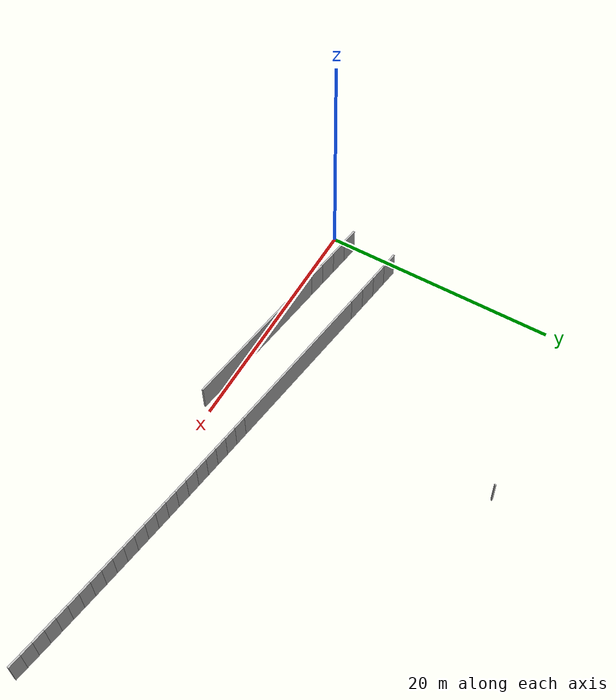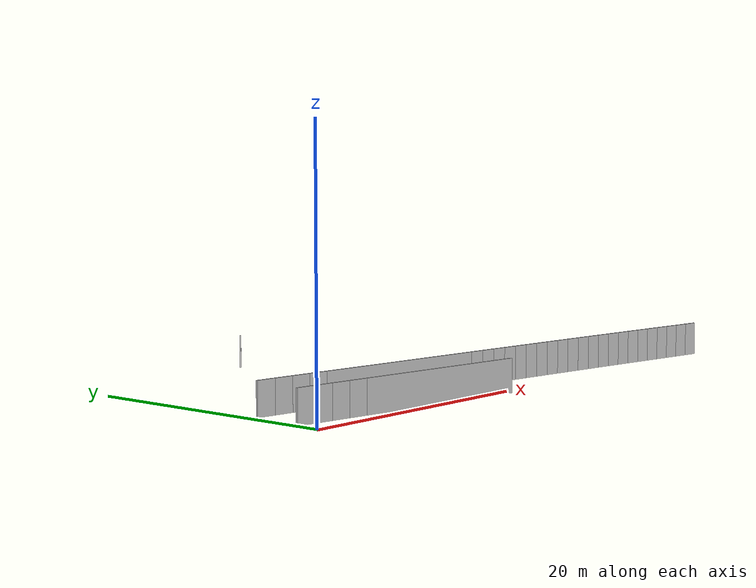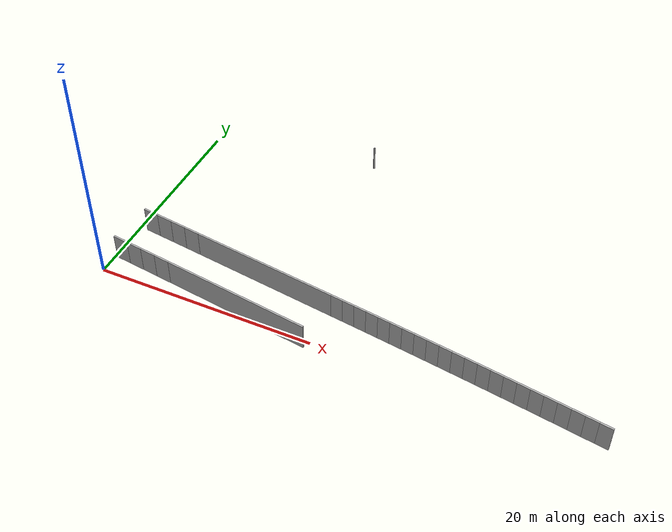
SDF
<?xml version="1.0" ?>
<sdf version="1.6">
  <model name="sps_2647">
    <pose frame="">0 0 0 0 -0 0</pose>
    <static>1</static>
    <self_collide>0</self_collide>
    <allow_auto_disable>0</allow_auto_disable>
    <link name="Wall251">
      <kinematic>0</kinematic>
      <gravity>1</gravity>
      <self_collide>0</self_collide>
      <collision name="collision">
        <geometry>
          <box>
            <size>13.7265 0.15 2.5</size>
          </box>
        </geometry>
        <pose frame="">0 0 0 0 -0 0</pose>
      </collision>
      <visual name="visual">
        <geometry>
          <box>
            <size>13.7265 0.15 2.5</size>
          </box>
        </geometry>
        <pose frame="">0 0 0 0 -0 0</pose>
        <cast_shadows>1</cast_shadows>
        <transparency>0.0</transparency>
      </visual>
      <pose frame="">12.9153 0.279403 1.25 0 0 -0.130471</pose>
    </link>
    <link name="Wall566">
      <kinematic>0</kinematic>
      <gravity>1</gravity>
      <self_collide>0</self_collide>
      <collision name="collision">
        <geometry>
          <box>
            <size>13.7167 0.15 2.5</size>
          </box>
        </geometry>
        <pose frame="">0 0 0 0 -0 0</pose>
      </collision>
      <visual name="visual">
        <geometry>
          <box>
            <size>13.7167 0.15 2.5</size>
          </box>
        </geometry>
        <pose frame="">0 0 0 0 -0 0</pose>
        <cast_shadows>1</cast_shadows>
        <transparency>0.0</transparency>
      </visual>
      <pose frame="">13.4524 4.38408 1.25 0 0 -0.130429</pose>
    </link>
    <link name="Wall646">
      <kinematic>0</kinematic>
      <gravity>1</gravity>
      <self_collide>0</self_collide>
      <collision name="collision">
        <geometry>
          <box>
            <size>0.100699 0.15 2.5</size>
          </box>
        </geometry>
        <pose frame="">0 0 0 0 -0 0</pose>
      </collision>
      <visual name="visual">
        <geometry>
          <box>
            <size>0.100699 0.15 2.5</size>
          </box>
        </geometry>
        <pose frame="">0 0 0 0 -0 0</pose>
        <cast_shadows>1</cast_shadows>
        <transparency>0.0</transparency>
      </visual>
      <pose frame="">15.8079 22.6316 1.25 0 -0 2.34205</pose>
    </link>
    <link name="Wall2781">
      <kinematic>0</kinematic>
      <gravity>1</gravity>
      <self_collide>0</self_collide>
      <collision name="collision">
        <geometry>
          <box>
            <size>1.49673 0.15 2.5</size>
          </box>
        </geometry>
        <pose frame="">0 0 0 0 -0 0</pose>
      </collision>
      <visual name="visual">
        <geometry>
          <box>
            <size>1.49673 0.15 2.5</size>
          </box>
        </geometry>
        <pose frame="">0 0 0 0 -0 0</pose>
        <cast_shadows>1</cast_shadows>
        <transparency>0.0</transparency>
      </visual>
      <pose frame="">5.36843 1.2697 1.25 0 -0 3.0111</pose>
    </link>
    <link name="Wall2782">
      <kinematic>0</kinematic>
      <gravity>1</gravity>
      <self_collide>0</self_collide>
      <collision name="collision">
        <geometry>
          <box>
            <size>1.4964 0.15 2.5</size>
          </box>
        </geometry>
        <pose frame="">0 0 0 0 -0 0</pose>
      </collision>
      <visual name="visual">
        <geometry>
          <box>
            <size>1.4964 0.15 2.5</size>
          </box>
        </geometry>
        <pose frame="">0 0 0 0 -0 0</pose>
        <cast_shadows>1</cast_shadows>
        <transparency>0.0</transparency>
      </visual>
      <pose frame="">3.88445 1.46339 1.25 0 -0 3.01251</pose>
    </link>
    <link name="Wall2783">
      <kinematic>0</kinematic>
      <gravity>1</gravity>
      <self_collide>0</self_collide>
      <collision name="collision">
        <geometry>
          <box>
            <size>1.49657 0.15 2.5</size>
          </box>
        </geometry>
        <pose frame="">0 0 0 0 -0 0</pose>
      </collision>
      <visual name="visual">
        <geometry>
          <box>
            <size>1.49657 0.15 2.5</size>
          </box>
        </geometry>
        <pose frame="">0 0 0 0 -0 0</pose>
        <cast_shadows>1</cast_shadows>
        <transparency>0.0</transparency>
      </visual>
      <pose frame="">2.40026 1.6548 1.25 0 -0 3.01417</pose>
    </link>
    <link name="Wall2784">
      <kinematic>0</kinematic>
      <gravity>1</gravity>
      <self_collide>0</self_collide>
      <collision name="collision">
        <geometry>
          <box>
            <size>1.49637 0.15 2.5</size>
          </box>
        </geometry>
        <pose frame="">0 0 0 0 -0 0</pose>
      </collision>
      <visual name="visual">
        <geometry>
          <box>
            <size>1.49637 0.15 2.5</size>
          </box>
        </geometry>
        <pose frame="">0 0 0 0 -0 0</pose>
        <cast_shadows>1</cast_shadows>
        <transparency>0.0</transparency>
      </visual>
      <pose frame="">0.915763 1.8437 1.25 0 -0 3.01588</pose>
    </link>
    <link name="Wall5392">
      <kinematic>0</kinematic>
      <gravity>1</gravity>
      <self_collide>0</self_collide>
      <collision name="collision">
        <geometry>
          <box>
            <size>1.50298 0.15 2.5</size>
          </box>
        </geometry>
        <pose frame="">0 0 0 0 -0 0</pose>
      </collision>
      <visual name="visual">
        <geometry>
          <box>
            <size>1.50298 0.15 2.5</size>
          </box>
        </geometry>
        <pose frame="">0 0 0 0 -0 0</pose>
        <cast_shadows>1</cast_shadows>
        <transparency>0.0</transparency>
      </visual>
      <pose frame="">5.90716 5.37398 1.25 0 -0 3.01095</pose>
    </link>
    <link name="Wall5393">
      <kinematic>0</kinematic>
      <gravity>1</gravity>
      <self_collide>0</self_collide>
      <collision name="collision">
        <geometry>
          <box>
            <size>1.5031 0.15 2.5</size>
          </box>
        </geometry>
        <pose frame="">0 0 0 0 -0 0</pose>
      </collision>
      <visual name="visual">
        <geometry>
          <box>
            <size>1.5031 0.15 2.5</size>
          </box>
        </geometry>
        <pose frame="">0 0 0 0 -0 0</pose>
        <cast_shadows>1</cast_shadows>
        <transparency>0.0</transparency>
      </visual>
      <pose frame="">4.41677 5.56859 1.25 0 -0 3.01255</pose>
    </link>
    <link name="Wall5394">
      <kinematic>0</kinematic>
      <gravity>1</gravity>
      <self_collide>0</self_collide>
      <collision name="collision">
        <geometry>
          <box>
            <size>1.50321 0.15 2.5</size>
          </box>
        </geometry>
        <pose frame="">0 0 0 0 -0 0</pose>
      </collision>
      <visual name="visual">
        <geometry>
          <box>
            <size>1.50321 0.15 2.5</size>
          </box>
        </geometry>
        <pose frame="">0 0 0 0 -0 0</pose>
        <cast_shadows>1</cast_shadows>
        <transparency>0.0</transparency>
      </visual>
      <pose frame="">2.92596 5.76079 1.25 0 -0 3.0142</pose>
    </link>
    <link name="Wall5395">
      <kinematic>0</kinematic>
      <gravity>1</gravity>
      <self_collide>0</self_collide>
      <collision name="collision">
        <geometry>
          <box>
            <size>1.50309 0.15 2.5</size>
          </box>
        </geometry>
        <pose frame="">0 0 0 0 -0 0</pose>
      </collision>
      <visual name="visual">
        <geometry>
          <box>
            <size>1.50309 0.15 2.5</size>
          </box>
        </geometry>
        <pose frame="">0 0 0 0 -0 0</pose>
        <cast_shadows>1</cast_shadows>
        <transparency>0.0</transparency>
      </visual>
      <pose frame="">1.43484 5.95058 1.25 0 -0 3.01579</pose>
    </link>
    <link name="Wall7289">
      <kinematic>0</kinematic>
      <gravity>1</gravity>
      <self_collide>0</self_collide>
      <collision name="collision">
        <geometry>
          <box>
            <size>1.12637 0.15 2.5</size>
          </box>
        </geometry>
        <pose frame="">0 0 0 0 -0 0</pose>
      </collision>
      <visual name="visual">
        <geometry>
          <box>
            <size>1.12637 0.15 2.5</size>
          </box>
        </geometry>
        <pose frame="">0 0 0 0 -0 0</pose>
        <cast_shadows>1</cast_shadows>
        <transparency>0.0</transparency>
      </visual>
      <pose frame="">44.2245 0.0717 1.25 0 -0 2.98725</pose>
    </link>
    <link name="Wall7290">
      <kinematic>0</kinematic>
      <gravity>1</gravity>
      <self_collide>0</self_collide>
      <collision name="collision">
        <geometry>
          <box>
            <size>1.12643 0.15 2.5</size>
          </box>
        </geometry>
        <pose frame="">0 0 0 0 -0 0</pose>
      </collision>
      <visual name="visual">
        <geometry>
          <box>
            <size>1.12643 0.15 2.5</size>
          </box>
        </geometry>
        <pose frame="">0 0 0 0 -0 0</pose>
        <cast_shadows>1</cast_shadows>
        <transparency>0.0</transparency>
      </visual>
      <pose frame="">43.1114 0.244277 1.25 0 -0 2.9883</pose>
    </link>
    <link name="Wall7291">
      <kinematic>0</kinematic>
      <gravity>1</gravity>
      <self_collide>0</self_collide>
      <collision name="collision">
        <geometry>
          <box>
            <size>1.12616 0.15 2.5</size>
          </box>
        </geometry>
        <pose frame="">0 0 0 0 -0 0</pose>
      </collision>
      <visual name="visual">
        <geometry>
          <box>
            <size>1.12616 0.15 2.5</size>
          </box>
        </geometry>
        <pose frame="">0 0 0 0 -0 0</pose>
        <cast_shadows>1</cast_shadows>
        <transparency>0.0</transparency>
      </visual>
      <pose frame="">41.9983 0.415572 1.25 0 -0 2.98952</pose>
    </link>
    <link name="Wall7292">
      <kinematic>0</kinematic>
      <gravity>1</gravity>
      <self_collide>0</self_collide>
      <collision name="collision">
        <geometry>
          <box>
            <size>1.12622 0.15 2.5</size>
          </box>
        </geometry>
        <pose frame="">0 0 0 0 -0 0</pose>
      </collision>
      <visual name="visual">
        <geometry>
          <box>
            <size>1.12622 0.15 2.5</size>
          </box>
        </geometry>
        <pose frame="">0 0 0 0 -0 0</pose>
        <cast_shadows>1</cast_shadows>
        <transparency>0.0</transparency>
      </visual>
      <pose frame="">40.885 0.585585 1.25 0 -0 2.99057</pose>
    </link>
    <link name="Wall7293">
      <kinematic>0</kinematic>
      <gravity>1</gravity>
      <self_collide>0</self_collide>
      <collision name="collision">
        <geometry>
          <box>
            <size>1.12642 0.15 2.5</size>
          </box>
        </geometry>
        <pose frame="">0 0 0 0 -0 0</pose>
      </collision>
      <visual name="visual">
        <geometry>
          <box>
            <size>1.12642 0.15 2.5</size>
          </box>
        </geometry>
        <pose frame="">0 0 0 0 -0 0</pose>
        <cast_shadows>1</cast_shadows>
        <transparency>0.0</transparency>
      </visual>
      <pose frame="">39.7714 0.754287 1.25 0 -0 2.99192</pose>
    </link>
    <link name="Wall7294">
      <kinematic>0</kinematic>
      <gravity>1</gravity>
      <self_collide>0</self_collide>
      <collision name="collision">
        <geometry>
          <box>
            <size>1.12619 0.15 2.5</size>
          </box>
        </geometry>
        <pose frame="">0 0 0 0 -0 0</pose>
      </collision>
      <visual name="visual">
        <geometry>
          <box>
            <size>1.12619 0.15 2.5</size>
          </box>
        </geometry>
        <pose frame="">0 0 0 0 -0 0</pose>
        <cast_shadows>1</cast_shadows>
        <transparency>0.0</transparency>
      </visual>
      <pose frame="">38.6576 0.921676 1.25 0 -0 2.99293</pose>
    </link>
    <link name="Wall7295">
      <kinematic>0</kinematic>
      <gravity>1</gravity>
      <self_collide>0</self_collide>
      <collision name="collision">
        <geometry>
          <box>
            <size>1.12623 0.15 2.5</size>
          </box>
        </geometry>
        <pose frame="">0 0 0 0 -0 0</pose>
      </collision>
      <visual name="visual">
        <geometry>
          <box>
            <size>1.12623 0.15 2.5</size>
          </box>
        </geometry>
        <pose frame="">0 0 0 0 -0 0</pose>
        <cast_shadows>1</cast_shadows>
        <transparency>0.0</transparency>
      </visual>
      <pose frame="">37.5437 1.08778 1.25 0 -0 2.99419</pose>
    </link>
    <link name="Wall7296">
      <kinematic>0</kinematic>
      <gravity>1</gravity>
      <self_collide>0</self_collide>
      <collision name="collision">
        <geometry>
          <box>
            <size>1.12638 0.15 2.5</size>
          </box>
        </geometry>
        <pose frame="">0 0 0 0 -0 0</pose>
      </collision>
      <visual name="visual">
        <geometry>
          <box>
            <size>1.12638 0.15 2.5</size>
          </box>
        </geometry>
        <pose frame="">0 0 0 0 -0 0</pose>
        <cast_shadows>1</cast_shadows>
        <transparency>0.0</transparency>
      </visual>
      <pose frame="">36.4295 1.25249 1.25 0 -0 2.99547</pose>
    </link>
    <link name="Wall7297">
      <kinematic>0</kinematic>
      <gravity>1</gravity>
      <self_collide>0</self_collide>
      <collision name="collision">
        <geometry>
          <box>
            <size>1.12627 0.15 2.5</size>
          </box>
        </geometry>
        <pose frame="">0 0 0 0 -0 0</pose>
      </collision>
      <visual name="visual">
        <geometry>
          <box>
            <size>1.12627 0.15 2.5</size>
          </box>
        </geometry>
        <pose frame="">0 0 0 0 -0 0</pose>
        <cast_shadows>1</cast_shadows>
        <transparency>0.0</transparency>
      </visual>
      <pose frame="">35.3151 1.41588 1.25 0 -0 2.99655</pose>
    </link>
    <link name="Wall7298">
      <kinematic>0</kinematic>
      <gravity>1</gravity>
      <self_collide>0</self_collide>
      <collision name="collision">
        <geometry>
          <box>
            <size>1.12644 0.15 2.5</size>
          </box>
        </geometry>
        <pose frame="">0 0 0 0 -0 0</pose>
      </collision>
      <visual name="visual">
        <geometry>
          <box>
            <size>1.12644 0.15 2.5</size>
          </box>
        </geometry>
        <pose frame="">0 0 0 0 -0 0</pose>
        <cast_shadows>1</cast_shadows>
        <transparency>0.0</transparency>
      </visual>
      <pose frame="">34.2004 1.57799 1.25 0 -0 2.99778</pose>
    </link>
    <link name="Wall7299">
      <kinematic>0</kinematic>
      <gravity>1</gravity>
      <self_collide>0</self_collide>
      <collision name="collision">
        <geometry>
          <box>
            <size>1.12641 0.15 2.5</size>
          </box>
        </geometry>
        <pose frame="">0 0 0 0 -0 0</pose>
      </collision>
      <visual name="visual">
        <geometry>
          <box>
            <size>1.12641 0.15 2.5</size>
          </box>
        </geometry>
        <pose frame="">0 0 0 0 -0 0</pose>
        <cast_shadows>1</cast_shadows>
        <transparency>0.0</transparency>
      </visual>
      <pose frame="">33.0855 1.73869 1.25 0 -0 2.99909</pose>
    </link>
    <link name="Wall7300">
      <kinematic>0</kinematic>
      <gravity>1</gravity>
      <self_collide>0</self_collide>
      <collision name="collision">
        <geometry>
          <box>
            <size>1.12624 0.15 2.5</size>
          </box>
        </geometry>
        <pose frame="">0 0 0 0 -0 0</pose>
      </collision>
      <visual name="visual">
        <geometry>
          <box>
            <size>1.12624 0.15 2.5</size>
          </box>
        </geometry>
        <pose frame="">0 0 0 0 -0 0</pose>
        <cast_shadows>1</cast_shadows>
        <transparency>0.0</transparency>
      </visual>
      <pose frame="">31.9705 1.89809 1.25 0 -0 3.00011</pose>
    </link>
    <link name="Wall7301">
      <kinematic>0</kinematic>
      <gravity>1</gravity>
      <self_collide>0</self_collide>
      <collision name="collision">
        <geometry>
          <box>
            <size>1.12625 0.15 2.5</size>
          </box>
        </geometry>
        <pose frame="">0 0 0 0 -0 0</pose>
      </collision>
      <visual name="visual">
        <geometry>
          <box>
            <size>1.12625 0.15 2.5</size>
          </box>
        </geometry>
        <pose frame="">0 0 0 0 -0 0</pose>
        <cast_shadows>1</cast_shadows>
        <transparency>0.0</transparency>
      </visual>
      <pose frame="">30.8555 2.05629 1.25 0 -0 3.00121</pose>
    </link>
    <link name="Wall7302">
      <kinematic>0</kinematic>
      <gravity>1</gravity>
      <self_collide>0</self_collide>
      <collision name="collision">
        <geometry>
          <box>
            <size>1.12627 0.15 2.5</size>
          </box>
        </geometry>
        <pose frame="">0 0 0 0 -0 0</pose>
      </collision>
      <visual name="visual">
        <geometry>
          <box>
            <size>1.12627 0.15 2.5</size>
          </box>
        </geometry>
        <pose frame="">0 0 0 0 -0 0</pose>
        <cast_shadows>1</cast_shadows>
        <transparency>0.0</transparency>
      </visual>
      <pose frame="">29.7402 2.21309 1.25 0 -0 3.00263</pose>
    </link>
    <link name="Wall7303">
      <kinematic>0</kinematic>
      <gravity>1</gravity>
      <self_collide>0</self_collide>
      <collision name="collision">
        <geometry>
          <box>
            <size>1.12629 0.15 2.5</size>
          </box>
        </geometry>
        <pose frame="">0 0 0 0 -0 0</pose>
      </collision>
      <visual name="visual">
        <geometry>
          <box>
            <size>1.12629 0.15 2.5</size>
          </box>
        </geometry>
        <pose frame="">0 0 0 0 -0 0</pose>
        <cast_shadows>1</cast_shadows>
        <transparency>0.0</transparency>
      </visual>
      <pose frame="">28.6247 2.36848 1.25 0 -0 3.00373</pose>
    </link>
    <link name="Wall7304">
      <kinematic>0</kinematic>
      <gravity>1</gravity>
      <self_collide>0</self_collide>
      <collision name="collision">
        <geometry>
          <box>
            <size>1.12628 0.15 2.5</size>
          </box>
        </geometry>
        <pose frame="">0 0 0 0 -0 0</pose>
      </collision>
      <visual name="visual">
        <geometry>
          <box>
            <size>1.12628 0.15 2.5</size>
          </box>
        </geometry>
        <pose frame="">0 0 0 0 -0 0</pose>
        <cast_shadows>1</cast_shadows>
        <transparency>0.0</transparency>
      </visual>
      <pose frame="">27.509 2.5226 1.25 0 -0 3.00493</pose>
    </link>
    <link name="Wall7305">
      <kinematic>0</kinematic>
      <gravity>1</gravity>
      <self_collide>0</self_collide>
      <collision name="collision">
        <geometry>
          <box>
            <size>1.12635 0.15 2.5</size>
          </box>
        </geometry>
        <pose frame="">0 0 0 0 -0 0</pose>
      </collision>
      <visual name="visual">
        <geometry>
          <box>
            <size>1.12635 0.15 2.5</size>
          </box>
        </geometry>
        <pose frame="">0 0 0 0 -0 0</pose>
        <cast_shadows>1</cast_shadows>
        <transparency>0.0</transparency>
      </visual>
      <pose frame="">26.3931 2.6754 1.25 0 -0 3.00609</pose>
    </link>
    <link name="Wall7306">
      <kinematic>0</kinematic>
      <gravity>1</gravity>
      <self_collide>0</self_collide>
      <collision name="collision">
        <geometry>
          <box>
            <size>1.12635 0.15 2.5</size>
          </box>
        </geometry>
        <pose frame="">0 0 0 0 -0 0</pose>
      </collision>
      <visual name="visual">
        <geometry>
          <box>
            <size>1.12635 0.15 2.5</size>
          </box>
        </geometry>
        <pose frame="">0 0 0 0 -0 0</pose>
        <cast_shadows>1</cast_shadows>
        <transparency>0.0</transparency>
      </visual>
      <pose frame="">25.2769 2.82689 1.25 0 -0 3.00729</pose>
    </link>
    <link name="Wall7307">
      <kinematic>0</kinematic>
      <gravity>1</gravity>
      <self_collide>0</self_collide>
      <collision name="collision">
        <geometry>
          <box>
            <size>1.12611 0.15 2.5</size>
          </box>
        </geometry>
        <pose frame="">0 0 0 0 -0 0</pose>
      </collision>
      <visual name="visual">
        <geometry>
          <box>
            <size>1.12611 0.15 2.5</size>
          </box>
        </geometry>
        <pose frame="">0 0 0 0 -0 0</pose>
        <cast_shadows>1</cast_shadows>
        <transparency>0.0</transparency>
      </visual>
      <pose frame="">24.1608 2.977 1.25 0 -0 3.00852</pose>
    </link>
    <link name="Wall7308">
      <kinematic>0</kinematic>
      <gravity>1</gravity>
      <self_collide>0</self_collide>
      <collision name="collision">
        <geometry>
          <box>
            <size>1.12643 0.15 2.5</size>
          </box>
        </geometry>
        <pose frame="">0 0 0 0 -0 0</pose>
      </collision>
      <visual name="visual">
        <geometry>
          <box>
            <size>1.12643 0.15 2.5</size>
          </box>
        </geometry>
        <pose frame="">0 0 0 0 -0 0</pose>
        <cast_shadows>1</cast_shadows>
        <transparency>0.0</transparency>
      </visual>
      <pose frame="">23.0444 3.12581 1.25 0 -0 3.00965</pose>
    </link>
    <link name="Wall7309">
      <kinematic>0</kinematic>
      <gravity>1</gravity>
      <self_collide>0</self_collide>
      <collision name="collision">
        <geometry>
          <box>
            <size>1.12618 0.15 2.5</size>
          </box>
        </geometry>
        <pose frame="">0 0 0 0 -0 0</pose>
      </collision>
      <visual name="visual">
        <geometry>
          <box>
            <size>1.12618 0.15 2.5</size>
          </box>
        </geometry>
        <pose frame="">0 0 0 0 -0 0</pose>
        <cast_shadows>1</cast_shadows>
        <transparency>0.0</transparency>
      </visual>
      <pose frame="">21.9278 3.2733 1.25 0 -0 3.01088</pose>
    </link>
    <link name="Wall7310">
      <kinematic>0</kinematic>
      <gravity>1</gravity>
      <self_collide>0</self_collide>
      <collision name="collision">
        <geometry>
          <box>
            <size>1.12643 0.15 2.5</size>
          </box>
        </geometry>
        <pose frame="">0 0 0 0 -0 0</pose>
      </collision>
      <visual name="visual">
        <geometry>
          <box>
            <size>1.12643 0.15 2.5</size>
          </box>
        </geometry>
        <pose frame="">0 0 0 0 -0 0</pose>
        <cast_shadows>1</cast_shadows>
        <transparency>0.0</transparency>
      </visual>
      <pose frame="">20.811 3.41939 1.25 0 -0 3.01216</pose>
    </link>
  </model>
</sdf>
